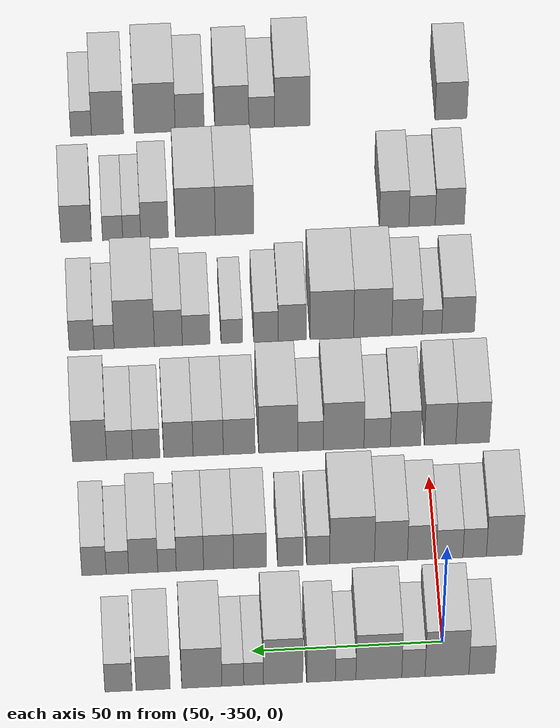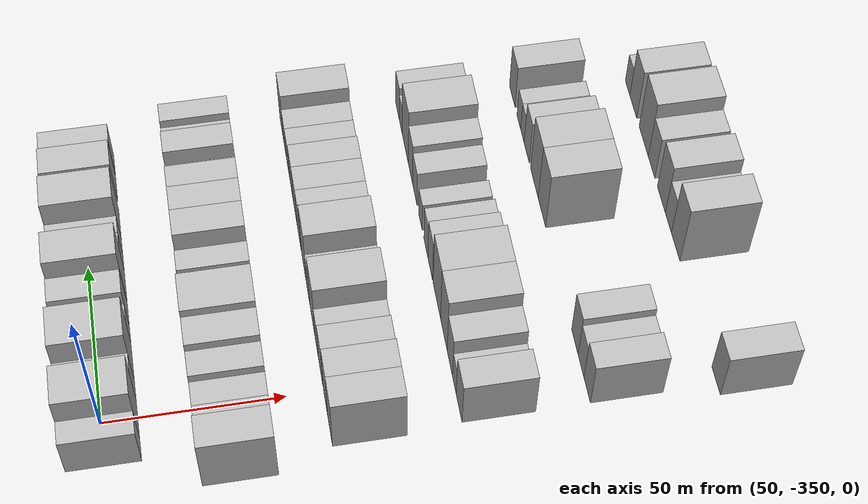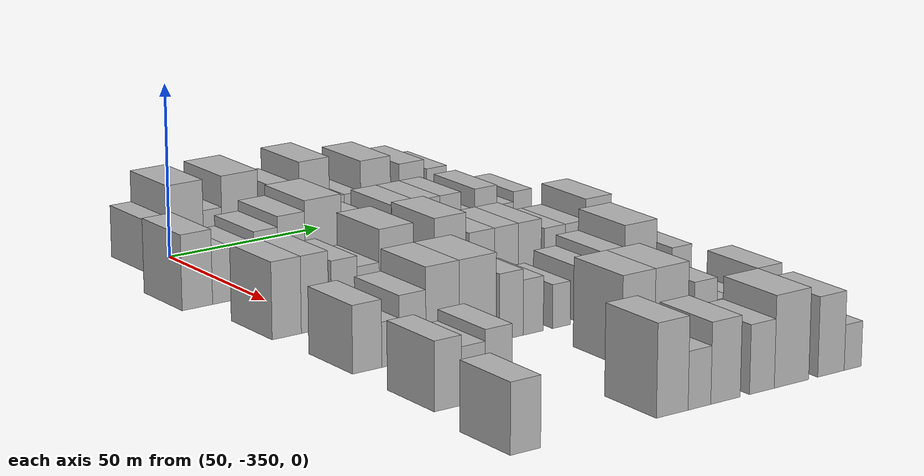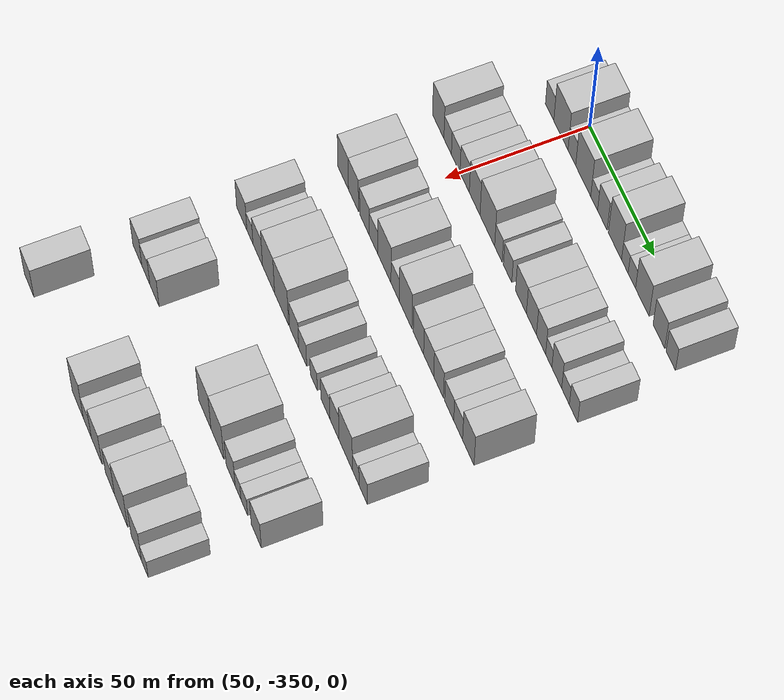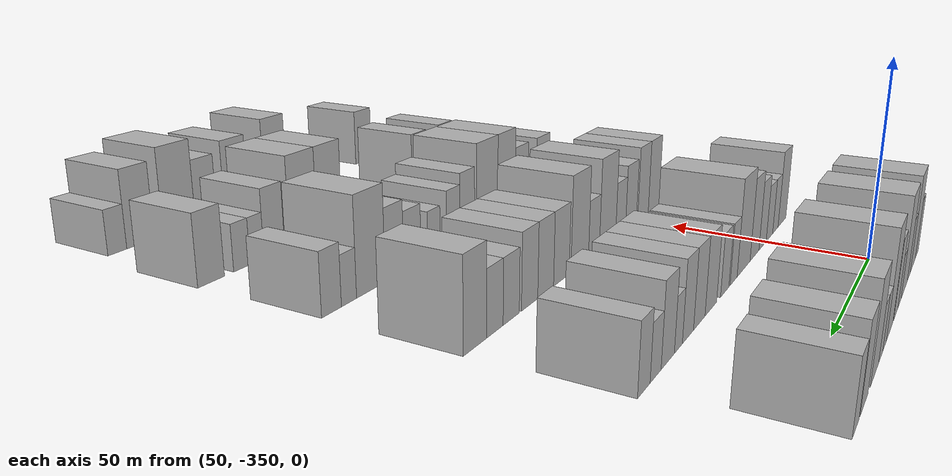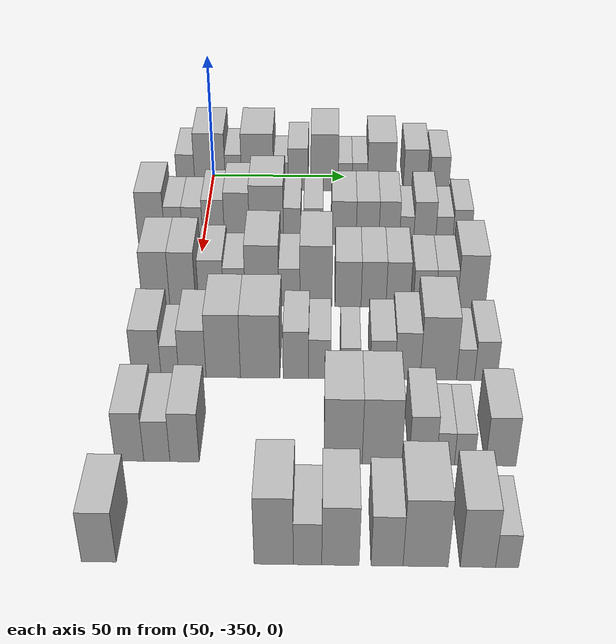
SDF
<sdf version="1.6">
 <world name="default">
  <model name="building_23">
   <static>1</static>
   <pose>50.0000 -359.5764 0 0.000000 0.000000 0.000000</pose>
   <link name="link">
    <pose>0 0 7.50 0 0 0</pose>
    <collision name="collision"><geometry><box><size>20.0000 6.7698 15.0000</size></box></geometry></collision>
    <visual name="visual">
     <cast_shadows>0</cast_shadows>
     <geometry><box><size>20.0000 6.7698 15.0000</size></box></geometry>
     <material>
      <script>
       <uri>model://HANNAS_wall/materials/scripts</uri>
       <uri>model://HANNAS_wall/materials/textures</uri>
       <name>vrc/HANNAS_wall</name>
      </script>
     </material>
    </visual>
   </link>
  </model>
  <model name="building_24">
   <static>1</static>
   <pose>50.0000 -350.4727 0 0.000000 0.000000 0.000000</pose>
   <link name="link">
    <pose>0 0 12.00 0 0 0</pose>
    <collision name="collision"><geometry><box><size>20.0000 11.4377 24.0000</size></box></geometry></collision>
    <visual name="visual">
     <cast_shadows>0</cast_shadows>
     <geometry><box><size>20.0000 11.4377 24.0000</size></box></geometry>
     <material>
      <script>
       <uri>model://HANNAS_wall/materials/scripts</uri>
       <uri>model://HANNAS_wall/materials/textures</uri>
       <name>vrc/HANNAS_wall</name>
      </script>
     </material>
    </visual>
   </link>
  </model>
  <model name="building_25">
   <static>1</static>
   <pose>50.0000 -341.7088 0 0.000000 0.000000 0.000000</pose>
   <link name="link">
    <pose>0 0 7.50 0 0 0</pose>
    <collision name="collision"><geometry><box><size>20.0000 6.0901 15.0000</size></box></geometry></collision>
    <visual name="visual">
     <cast_shadows>0</cast_shadows>
     <geometry><box><size>20.0000 6.0901 15.0000</size></box></geometry>
     <material>
      <script>
       <uri>model://HANNAS_wall/materials/scripts</uri>
       <uri>model://HANNAS_wall/materials/textures</uri>
       <name>vrc/HANNAS_wall</name>
      </script>
     </material>
    </visual>
   </link>
  </model>
  <model name="building_26">
   <static>1</static>
   <pose>50.0000 -332.6822 0 0.000000 0.000000 0.000000</pose>
   <link name="link">
    <pose>0 0 12.00 0 0 0</pose>
    <collision name="collision"><geometry><box><size>20.0000 11.9631 24.0000</size></box></geometry></collision>
    <visual name="visual">
     <cast_shadows>0</cast_shadows>
     <geometry><box><size>20.0000 11.9631 24.0000</size></box></geometry>
     <material>
      <script>
       <uri>model://HANNAS_wall/materials/scripts</uri>
       <uri>model://HANNAS_wall/materials/textures</uri>
       <name>vrc/HANNAS_wall</name>
      </script>
     </material>
    </visual>
   </link>
  </model>
  <model name="building_27">
   <static>1</static>
   <pose>50.0000 -324.0111 0 0.000000 0.000000 0.000000</pose>
   <link name="link">
    <pose>0 0 6.00 0 0 0</pose>
    <collision name="collision"><geometry><box><size>20.0000 5.3791 12.0000</size></box></geometry></collision>
    <visual name="visual">
     <cast_shadows>0</cast_shadows>
     <geometry><box><size>20.0000 5.3791 12.0000</size></box></geometry>
     <material>
      <script>
       <uri>model://HANNAS_wall/materials/scripts</uri>
       <uri>model://HANNAS_wall/materials/textures</uri>
       <name>vrc/HANNAS_wall</name>
      </script>
     </material>
    </visual>
   </link>
  </model>
  <model name="building_28">
   <static>1</static>
   <pose>50.0000 -317.5810 0 0.000000 0.000000 0.000000</pose>
   <link name="link">
    <pose>0 0 9.00 0 0 0</pose>
    <collision name="collision"><geometry><box><size>20.0000 7.4811 18.0000</size></box></geometry></collision>
    <visual name="visual">
     <cast_shadows>0</cast_shadows>
     <geometry><box><size>20.0000 7.4811 18.0000</size></box></geometry>
     <material>
      <script>
       <uri>model://HANNAS_wall/materials/scripts</uri>
       <uri>model://HANNAS_wall/materials/textures</uri>
       <name>vrc/HANNAS_wall</name>
      </script>
     </material>
    </visual>
   </link>
  </model>
  <model name="building_29">
   <static>1</static>
   <pose>50.0000 -307.7111 0 0.000000 0.000000 0.000000</pose>
   <link name="link">
    <pose>0 0 12.00 0 0 0</pose>
    <collision name="collision"><geometry><box><size>20.0000 10.2588 24.0000</size></box></geometry></collision>
    <visual name="visual">
     <cast_shadows>0</cast_shadows>
     <geometry><box><size>20.0000 10.2588 24.0000</size></box></geometry>
     <material>
      <script>
       <uri>model://HANNAS_wall/materials/scripts</uri>
       <uri>model://HANNAS_wall/materials/textures</uri>
       <name>vrc/HANNAS_wall</name>
      </script>
     </material>
    </visual>
   </link>
  </model>
  <model name="building_30">
   <static>1</static>
   <pose>50.0000 -300.0173 0 0.000000 0.000000 0.000000</pose>
   <link name="link">
    <pose>0 0 6.00 0 0 0</pose>
    <collision name="collision"><geometry><box><size>20.0000 5.1288 12.0000</size></box></geometry></collision>
    <visual name="visual">
     <cast_shadows>0</cast_shadows>
     <geometry><box><size>20.0000 5.1288 12.0000</size></box></geometry>
     <material>
      <script>
       <uri>model://HANNAS_wall/materials/scripts</uri>
       <uri>model://HANNAS_wall/materials/textures</uri>
       <name>vrc/HANNAS_wall</name>
      </script>
     </material>
    </visual>
   </link>
  </model>
  <model name="building_31">
   <static>1</static>
   <pose>50.0000 -294.6015 0 0.000000 0.000000 0.000000</pose>
   <link name="link">
    <pose>0 0 6.00 0 0 0</pose>
    <collision name="collision"><geometry><box><size>20.0000 5.7028 12.0000</size></box></geometry></collision>
    <visual name="visual">
     <cast_shadows>0</cast_shadows>
     <geometry><box><size>20.0000 5.7028 12.0000</size></box></geometry>
     <material>
      <script>
       <uri>model://HANNAS_wall/materials/scripts</uri>
       <uri>model://HANNAS_wall/materials/textures</uri>
       <name>vrc/HANNAS_wall</name>
      </script>
     </material>
    </visual>
   </link>
  </model>
  <model name="building_32">
   <static>1</static>
   <pose>50.0000 -286.5215 0 0.000000 0.000000 0.000000</pose>
   <link name="link">
    <pose>0 0 10.50 0 0 0</pose>
    <collision name="collision"><geometry><box><size>20.0000 10.4572 21.0000</size></box></geometry></collision>
    <visual name="visual">
     <cast_shadows>0</cast_shadows>
     <geometry><box><size>20.0000 10.4572 21.0000</size></box></geometry>
     <material>
      <script>
       <uri>model://HANNAS_wall/materials/scripts</uri>
       <uri>model://HANNAS_wall/materials/textures</uri>
       <name>vrc/HANNAS_wall</name>
      </script>
     </material>
    </visual>
   </link>
  </model>
  <model name="building_33">
   <static>1</static>
   <pose>50.0000 -273.8379 0 0.000000 0.000000 0.000000</pose>
   <link name="link">
    <pose>0 0 9.00 0 0 0</pose>
    <collision name="collision"><geometry><box><size>20.0000 8.9101 18.0000</size></box></geometry></collision>
    <visual name="visual">
     <cast_shadows>0</cast_shadows>
     <geometry><box><size>20.0000 8.9101 18.0000</size></box></geometry>
     <material>
      <script>
       <uri>model://HANNAS_wall/materials/scripts</uri>
       <uri>model://HANNAS_wall/materials/textures</uri>
       <name>vrc/HANNAS_wall</name>
      </script>
     </material>
    </visual>
   </link>
  </model>
  <model name="building_34">
   <static>1</static>
   <pose>50.0000 -264.8228 0 0.000000 0.000000 0.000000</pose>
   <link name="link">
    <pose>0 0 7.50 0 0 0</pose>
    <collision name="collision"><geometry><box><size>20.0000 7.1200 15.0000</size></box></geometry></collision>
    <visual name="visual">
     <cast_shadows>0</cast_shadows>
     <geometry><box><size>20.0000 7.1200 15.0000</size></box></geometry>
     <material>
      <script>
       <uri>model://HANNAS_wall/materials/scripts</uri>
       <uri>model://HANNAS_wall/materials/textures</uri>
       <name>vrc/HANNAS_wall</name>
      </script>
     </material>
    </visual>
   </link>
  </model>
  <model name="building_153">
   <static>1</static>
   <pose>85.0000 -368.1212 0 0.000000 0.000000 0.000000</pose>
   <link name="link">
    <pose>0 0 10.50 0 0 0</pose>
    <collision name="collision"><geometry><box><size>20.0000 9.4600 21.0000</size></box></geometry></collision>
    <visual name="visual">
     <cast_shadows>0</cast_shadows>
     <geometry><box><size>20.0000 9.4600 21.0000</size></box></geometry>
     <material>
      <script>
       <uri>model://HANNAS_wall/materials/scripts</uri>
       <uri>model://HANNAS_wall/materials/textures</uri>
       <name>vrc/HANNAS_wall</name>
      </script>
     </material>
    </visual>
   </link>
  </model>
  <model name="building_154">
   <static>1</static>
   <pose>85.0000 -360.2801 0 0.000000 0.000000 0.000000</pose>
   <link name="link">
    <pose>0 0 7.50 0 0 0</pose>
    <collision name="collision"><geometry><box><size>20.0000 6.2222 15.0000</size></box></geometry></collision>
    <visual name="visual">
     <cast_shadows>0</cast_shadows>
     <geometry><box><size>20.0000 6.2222 15.0000</size></box></geometry>
     <material>
      <script>
       <uri>model://HANNAS_wall/materials/scripts</uri>
       <uri>model://HANNAS_wall/materials/textures</uri>
       <name>vrc/HANNAS_wall</name>
      </script>
     </material>
    </visual>
   </link>
  </model>
  <model name="building_155">
   <static>1</static>
   <pose>85.0000 -353.6346 0 0.000000 0.000000 0.000000</pose>
   <link name="link">
    <pose>0 0 7.50 0 0 0</pose>
    <collision name="collision"><geometry><box><size>20.0000 7.0688 15.0000</size></box></geometry></collision>
    <visual name="visual">
     <cast_shadows>0</cast_shadows>
     <geometry><box><size>20.0000 7.0688 15.0000</size></box></geometry>
     <material>
      <script>
       <uri>model://HANNAS_wall/materials/scripts</uri>
       <uri>model://HANNAS_wall/materials/textures</uri>
       <name>vrc/HANNAS_wall</name>
      </script>
     </material>
    </visual>
   </link>
  </model>
  <model name="building_156">
   <static>1</static>
   <pose>85.0000 -346.2900 0 0.000000 0.000000 0.000000</pose>
   <link name="link">
    <pose>0 0 9.00 0 0 0</pose>
    <collision name="collision"><geometry><box><size>20.0000 7.6204 18.0000</size></box></geometry></collision>
    <visual name="visual">
     <cast_shadows>0</cast_shadows>
     <geometry><box><size>20.0000 7.6204 18.0000</size></box></geometry>
     <material>
      <script>
       <uri>model://HANNAS_wall/materials/scripts</uri>
       <uri>model://HANNAS_wall/materials/textures</uri>
       <name>vrc/HANNAS_wall</name>
      </script>
     </material>
    </visual>
   </link>
  </model>
  <model name="building_157">
   <static>1</static>
   <pose>85.0000 -338.1153 0 0.000000 0.000000 0.000000</pose>
   <link name="link">
    <pose>0 0 10.50 0 0 0</pose>
    <collision name="collision"><geometry><box><size>20.0000 8.7290 21.0000</size></box></geometry></collision>
    <visual name="visual">
     <cast_shadows>0</cast_shadows>
     <geometry><box><size>20.0000 8.7290 21.0000</size></box></geometry>
     <material>
      <script>
       <uri>model://HANNAS_wall/materials/scripts</uri>
       <uri>model://HANNAS_wall/materials/textures</uri>
       <name>vrc/HANNAS_wall</name>
      </script>
     </material>
    </visual>
   </link>
  </model>
  <model name="building_158">
   <static>1</static>
   <pose>85.0000 -327.8190 0 0.000000 0.000000 0.000000</pose>
   <link name="link">
    <pose>0 0 12.00 0 0 0</pose>
    <collision name="collision"><geometry><box><size>20.0000 11.8637 24.0000</size></box></geometry></collision>
    <visual name="visual">
     <cast_shadows>0</cast_shadows>
     <geometry><box><size>20.0000 11.8637 24.0000</size></box></geometry>
     <material>
      <script>
       <uri>model://HANNAS_wall/materials/scripts</uri>
       <uri>model://HANNAS_wall/materials/textures</uri>
       <name>vrc/HANNAS_wall</name>
      </script>
     </material>
    </visual>
   </link>
  </model>
  <model name="building_159">
   <static>1</static>
   <pose>85.0000 -318.8666 0 0.000000 0.000000 0.000000</pose>
   <link name="link">
    <pose>0 0 7.50 0 0 0</pose>
    <collision name="collision"><geometry><box><size>20.0000 6.0411 15.0000</size></box></geometry></collision>
    <visual name="visual">
     <cast_shadows>0</cast_shadows>
     <geometry><box><size>20.0000 6.0411 15.0000</size></box></geometry>
     <material>
      <script>
       <uri>model://HANNAS_wall/materials/scripts</uri>
       <uri>model://HANNAS_wall/materials/textures</uri>
       <name>vrc/HANNAS_wall</name>
      </script>
     </material>
    </visual>
   </link>
  </model>
  <model name="building_160">
   <static>1</static>
   <pose>85.0000 -311.5044 0 0.000000 0.000000 0.000000</pose>
   <link name="link">
    <pose>0 0 7.50 0 0 0</pose>
    <collision name="collision"><geometry><box><size>20.0000 6.6834 15.0000</size></box></geometry></collision>
    <visual name="visual">
     <cast_shadows>0</cast_shadows>
     <geometry><box><size>20.0000 6.6834 15.0000</size></box></geometry>
     <material>
      <script>
       <uri>model://HANNAS_wall/materials/scripts</uri>
       <uri>model://HANNAS_wall/materials/textures</uri>
       <name>vrc/HANNAS_wall</name>
      </script>
     </material>
    </visual>
   </link>
  </model>
  <model name="building_161">
   <static>1</static>
   <pose>85.0000 -300.8433 0 0.000000 0.000000 0.000000</pose>
   <link name="link">
    <pose>0 0 9.00 0 0 0</pose>
    <collision name="collision"><geometry><box><size>20.0000 8.6386 18.0000</size></box></geometry></collision>
    <visual name="visual">
     <cast_shadows>0</cast_shadows>
     <geometry><box><size>20.0000 8.6386 18.0000</size></box></geometry>
     <material>
      <script>
       <uri>model://HANNAS_wall/materials/scripts</uri>
       <uri>model://HANNAS_wall/materials/textures</uri>
       <name>vrc/HANNAS_wall</name>
      </script>
     </material>
    </visual>
   </link>
  </model>
  <model name="building_162">
   <static>1</static>
   <pose>85.0000 -292.5552 0 0.000000 0.000000 0.000000</pose>
   <link name="link">
    <pose>0 0 9.00 0 0 0</pose>
    <collision name="collision"><geometry><box><size>20.0000 7.9376 18.0000</size></box></geometry></collision>
    <visual name="visual">
     <cast_shadows>0</cast_shadows>
     <geometry><box><size>20.0000 7.9376 18.0000</size></box></geometry>
     <material>
      <script>
       <uri>model://HANNAS_wall/materials/scripts</uri>
       <uri>model://HANNAS_wall/materials/textures</uri>
       <name>vrc/HANNAS_wall</name>
      </script>
     </material>
    </visual>
   </link>
  </model>
  <model name="building_163">
   <static>1</static>
   <pose>85.0000 -284.9778 0 0.000000 0.000000 0.000000</pose>
   <link name="link">
    <pose>0 0 9.00 0 0 0</pose>
    <collision name="collision"><geometry><box><size>20.0000 7.2172 18.0000</size></box></geometry></collision>
    <visual name="visual">
     <cast_shadows>0</cast_shadows>
     <geometry><box><size>20.0000 7.2172 18.0000</size></box></geometry>
     <material>
      <script>
       <uri>model://HANNAS_wall/materials/scripts</uri>
       <uri>model://HANNAS_wall/materials/textures</uri>
       <name>vrc/HANNAS_wall</name>
      </script>
     </material>
    </visual>
   </link>
  </model>
  <model name="building_164">
   <static>1</static>
   <pose>85.0000 -278.9257 0 0.000000 0.000000 0.000000</pose>
   <link name="link">
    <pose>0 0 6.00 0 0 0</pose>
    <collision name="collision"><geometry><box><size>20.0000 4.8871 12.0000</size></box></geometry></collision>
    <visual name="visual">
     <cast_shadows>0</cast_shadows>
     <geometry><box><size>20.0000 4.8871 12.0000</size></box></geometry>
     <material>
      <script>
       <uri>model://HANNAS_wall/materials/scripts</uri>
       <uri>model://HANNAS_wall/materials/textures</uri>
       <name>vrc/HANNAS_wall</name>
      </script>
     </material>
    </visual>
   </link>
  </model>
  <model name="building_165">
   <static>1</static>
   <pose>85.0000 -272.6538 0 0.000000 0.000000 0.000000</pose>
   <link name="link">
    <pose>0 0 9.00 0 0 0</pose>
    <collision name="collision"><geometry><box><size>20.0000 7.6566 18.0000</size></box></geometry></collision>
    <visual name="visual">
     <cast_shadows>0</cast_shadows>
     <geometry><box><size>20.0000 7.6566 18.0000</size></box></geometry>
     <material>
      <script>
       <uri>model://HANNAS_wall/materials/scripts</uri>
       <uri>model://HANNAS_wall/materials/textures</uri>
       <name>vrc/HANNAS_wall</name>
      </script>
     </material>
    </visual>
   </link>
  </model>
  <model name="building_166">
   <static>1</static>
   <pose>85.0000 -265.8459 0 0.000000 0.000000 0.000000</pose>
   <link name="link">
    <pose>0 0 6.00 0 0 0</pose>
    <collision name="collision"><geometry><box><size>20.0000 5.9593 12.0000</size></box></geometry></collision>
    <visual name="visual">
     <cast_shadows>0</cast_shadows>
     <geometry><box><size>20.0000 5.9593 12.0000</size></box></geometry>
     <material>
      <script>
       <uri>model://HANNAS_wall/materials/scripts</uri>
       <uri>model://HANNAS_wall/materials/textures</uri>
       <name>vrc/HANNAS_wall</name>
      </script>
     </material>
    </visual>
   </link>
  </model>
  <model name="building_167">
   <static>1</static>
   <pose>85.0000 -259.6561 0 0.000000 0.000000 0.000000</pose>
   <link name="link">
    <pose>0 0 7.50 0 0 0</pose>
    <collision name="collision"><geometry><box><size>20.0000 6.4202 15.0000</size></box></geometry></collision>
    <visual name="visual">
     <cast_shadows>0</cast_shadows>
     <geometry><box><size>20.0000 6.4202 15.0000</size></box></geometry>
     <material>
      <script>
       <uri>model://HANNAS_wall/materials/scripts</uri>
       <uri>model://HANNAS_wall/materials/textures</uri>
       <name>vrc/HANNAS_wall</name>
      </script>
     </material>
    </visual>
   </link>
  </model>
  <model name="building_288">
   <static>1</static>
   <pose>120.0000 -362.3247 0 0.000000 0.000000 0.000000</pose>
   <link name="link">
    <pose>0 0 10.50 0 0 0</pose>
    <collision name="collision"><geometry><box><size>20.0000 9.0084 21.0000</size></box></geometry></collision>
    <visual name="visual">
     <cast_shadows>0</cast_shadows>
     <geometry><box><size>20.0000 9.0084 21.0000</size></box></geometry>
     <material>
      <script>
       <uri>model://HANNAS_wall/materials/scripts</uri>
       <uri>model://HANNAS_wall/materials/textures</uri>
       <name>vrc/HANNAS_wall</name>
      </script>
     </material>
    </visual>
   </link>
  </model>
  <model name="building_289">
   <static>1</static>
   <pose>120.0000 -353.5827 0 0.000000 0.000000 0.000000</pose>
   <link name="link">
    <pose>0 0 10.50 0 0 0</pose>
    <collision name="collision"><geometry><box><size>20.0000 8.4756 21.0000</size></box></geometry></collision>
    <visual name="visual">
     <cast_shadows>0</cast_shadows>
     <geometry><box><size>20.0000 8.4756 21.0000</size></box></geometry>
     <material>
      <script>
       <uri>model://HANNAS_wall/materials/scripts</uri>
       <uri>model://HANNAS_wall/materials/textures</uri>
       <name>vrc/HANNAS_wall</name>
      </script>
     </material>
    </visual>
   </link>
  </model>
  <model name="building_290">
   <static>1</static>
   <pose>120.0000 -344.2671 0 0.000000 0.000000 0.000000</pose>
   <link name="link">
    <pose>0 0 9.00 0 0 0</pose>
    <collision name="collision"><geometry><box><size>20.0000 8.1555 18.0000</size></box></geometry></collision>
    <visual name="visual">
     <cast_shadows>0</cast_shadows>
     <geometry><box><size>20.0000 8.1555 18.0000</size></box></geometry>
     <material>
      <script>
       <uri>model://HANNAS_wall/materials/scripts</uri>
       <uri>model://HANNAS_wall/materials/textures</uri>
       <name>vrc/HANNAS_wall</name>
      </script>
     </material>
    </visual>
   </link>
  </model>
  <model name="building_291">
   <static>1</static>
   <pose>120.0000 -336.6676 0 0.000000 0.000000 0.000000</pose>
   <link name="link">
    <pose>0 0 7.50 0 0 0</pose>
    <collision name="collision"><geometry><box><size>20.0000 7.0435 15.0000</size></box></geometry></collision>
    <visual name="visual">
     <cast_shadows>0</cast_shadows>
     <geometry><box><size>20.0000 7.0435 15.0000</size></box></geometry>
     <material>
      <script>
       <uri>model://HANNAS_wall/materials/scripts</uri>
       <uri>model://HANNAS_wall/materials/textures</uri>
       <name>vrc/HANNAS_wall</name>
      </script>
     </material>
    </visual>
   </link>
  </model>
  <model name="building_292">
   <static>1</static>
   <pose>120.0000 -327.6924 0 0.000000 0.000000 0.000000</pose>
   <link name="link">
    <pose>0 0 12.00 0 0 0</pose>
    <collision name="collision"><geometry><box><size>20.0000 10.9069 24.0000</size></box></geometry></collision>
    <visual name="visual">
     <cast_shadows>0</cast_shadows>
     <geometry><box><size>20.0000 10.9069 24.0000</size></box></geometry>
     <material>
      <script>
       <uri>model://HANNAS_wall/materials/scripts</uri>
       <uri>model://HANNAS_wall/materials/textures</uri>
       <name>vrc/HANNAS_wall</name>
      </script>
     </material>
    </visual>
   </link>
  </model>
  <model name="building_293">
   <static>1</static>
   <pose>120.0000 -318.8040 0 0.000000 0.000000 0.000000</pose>
   <link name="link">
    <pose>0 0 7.50 0 0 0</pose>
    <collision name="collision"><geometry><box><size>20.0000 6.8697 15.0000</size></box></geometry></collision>
    <visual name="visual">
     <cast_shadows>0</cast_shadows>
     <geometry><box><size>20.0000 6.8697 15.0000</size></box></geometry>
     <material>
      <script>
       <uri>model://HANNAS_wall/materials/scripts</uri>
       <uri>model://HANNAS_wall/materials/textures</uri>
       <name>vrc/HANNAS_wall</name>
      </script>
     </material>
    </visual>
   </link>
  </model>
  <model name="building_294">
   <static>1</static>
   <pose>120.0000 -310.1662 0 0.000000 0.000000 0.000000</pose>
   <link name="link">
    <pose>0 0 12.00 0 0 0</pose>
    <collision name="collision"><geometry><box><size>20.0000 10.4059 24.0000</size></box></geometry></collision>
    <visual name="visual">
     <cast_shadows>0</cast_shadows>
     <geometry><box><size>20.0000 10.4059 24.0000</size></box></geometry>
     <material>
      <script>
       <uri>model://HANNAS_wall/materials/scripts</uri>
       <uri>model://HANNAS_wall/materials/textures</uri>
       <name>vrc/HANNAS_wall</name>
      </script>
     </material>
    </visual>
   </link>
  </model>
  <model name="building_295">
   <static>1</static>
   <pose>120.0000 -299.7187 0 0.000000 0.000000 0.000000</pose>
   <link name="link">
    <pose>0 0 9.00 0 0 0</pose>
    <collision name="collision"><geometry><box><size>20.0000 8.4891 18.0000</size></box></geometry></collision>
    <visual name="visual">
     <cast_shadows>0</cast_shadows>
     <geometry><box><size>20.0000 8.4891 18.0000</size></box></geometry>
     <material>
      <script>
       <uri>model://HANNAS_wall/materials/scripts</uri>
       <uri>model://HANNAS_wall/materials/textures</uri>
       <name>vrc/HANNAS_wall</name>
      </script>
     </material>
    </visual>
   </link>
  </model>
  <model name="building_296">
   <static>1</static>
   <pose>120.0000 -291.4228 0 0.000000 0.000000 0.000000</pose>
   <link name="link">
    <pose>0 0 9.00 0 0 0</pose>
    <collision name="collision"><geometry><box><size>20.0000 8.1028 18.0000</size></box></geometry></collision>
    <visual name="visual">
     <cast_shadows>0</cast_shadows>
     <geometry><box><size>20.0000 8.1028 18.0000</size></box></geometry>
     <material>
      <script>
       <uri>model://HANNAS_wall/materials/scripts</uri>
       <uri>model://HANNAS_wall/materials/textures</uri>
       <name>vrc/HANNAS_wall</name>
      </script>
     </material>
    </visual>
   </link>
  </model>
  <model name="building_297">
   <static>1</static>
   <pose>120.0000 -283.4492 0 0.000000 0.000000 0.000000</pose>
   <link name="link">
    <pose>0 0 9.00 0 0 0</pose>
    <collision name="collision"><geometry><box><size>20.0000 7.8443 18.0000</size></box></geometry></collision>
    <visual name="visual">
     <cast_shadows>0</cast_shadows>
     <geometry><box><size>20.0000 7.8443 18.0000</size></box></geometry>
     <material>
      <script>
       <uri>model://HANNAS_wall/materials/scripts</uri>
       <uri>model://HANNAS_wall/materials/textures</uri>
       <name>vrc/HANNAS_wall</name>
      </script>
     </material>
    </visual>
   </link>
  </model>
  <model name="building_298">
   <static>1</static>
   <pose>120.0000 -274.9010 0 0.000000 0.000000 0.000000</pose>
   <link name="link">
    <pose>0 0 7.50 0 0 0</pose>
    <collision name="collision"><geometry><box><size>20.0000 7.2520 15.0000</size></box></geometry></collision>
    <visual name="visual">
     <cast_shadows>0</cast_shadows>
     <geometry><box><size>20.0000 7.2520 15.0000</size></box></geometry>
     <material>
      <script>
       <uri>model://HANNAS_wall/materials/scripts</uri>
       <uri>model://HANNAS_wall/materials/textures</uri>
       <name>vrc/HANNAS_wall</name>
      </script>
     </material>
    </visual>
   </link>
  </model>
  <model name="building_299">
   <static>1</static>
   <pose>120.0000 -267.7712 0 0.000000 0.000000 0.000000</pose>
   <link name="link">
    <pose>0 0 7.50 0 0 0</pose>
    <collision name="collision"><geometry><box><size>20.0000 7.0077 15.0000</size></box></geometry></collision>
    <visual name="visual">
     <cast_shadows>0</cast_shadows>
     <geometry><box><size>20.0000 7.0077 15.0000</size></box></geometry>
     <material>
      <script>
       <uri>model://HANNAS_wall/materials/scripts</uri>
       <uri>model://HANNAS_wall/materials/textures</uri>
       <name>vrc/HANNAS_wall</name>
      </script>
     </material>
    </visual>
   </link>
  </model>
  <model name="building_300">
   <static>1</static>
   <pose>120.0000 -259.7203 0 0.000000 0.000000 0.000000</pose>
   <link name="link">
    <pose>0 0 10.50 0 0 0</pose>
    <collision name="collision"><geometry><box><size>20.0000 9.0942 21.0000</size></box></geometry></collision>
    <visual name="visual">
     <cast_shadows>0</cast_shadows>
     <geometry><box><size>20.0000 9.0942 21.0000</size></box></geometry>
     <material>
      <script>
       <uri>model://HANNAS_wall/materials/scripts</uri>
       <uri>model://HANNAS_wall/materials/textures</uri>
       <name>vrc/HANNAS_wall</name>
      </script>
     </material>
    </visual>
   </link>
  </model>
  <model name="building_415">
   <static>1</static>
   <pose>155.0000 -360.9027 0 0.000000 0.000000 0.000000</pose>
   <link name="link">
    <pose>0 0 9.00 0 0 0</pose>
    <collision name="collision"><geometry><box><size>20.0000 8.8611 18.0000</size></box></geometry></collision>
    <visual name="visual">
     <cast_shadows>0</cast_shadows>
     <geometry><box><size>20.0000 8.8611 18.0000</size></box></geometry>
     <material>
      <script>
       <uri>model://HANNAS_wall/materials/scripts</uri>
       <uri>model://HANNAS_wall/materials/textures</uri>
       <name>vrc/HANNAS_wall</name>
      </script>
     </material>
    </visual>
   </link>
  </model>
  <model name="building_416">
   <static>1</static>
   <pose>155.0000 -353.7948 0 0.000000 0.000000 0.000000</pose>
   <link name="link">
    <pose>0 0 6.00 0 0 0</pose>
    <collision name="collision"><geometry><box><size>20.0000 5.3547 12.0000</size></box></geometry></collision>
    <visual name="visual">
     <cast_shadows>0</cast_shadows>
     <geometry><box><size>20.0000 5.3547 12.0000</size></box></geometry>
     <material>
      <script>
       <uri>model://HANNAS_wall/materials/scripts</uri>
       <uri>model://HANNAS_wall/materials/textures</uri>
       <name>vrc/HANNAS_wall</name>
      </script>
     </material>
    </visual>
   </link>
  </model>
  <model name="building_417">
   <static>1</static>
   <pose>155.0000 -347.0029 0 0.000000 0.000000 0.000000</pose>
   <link name="link">
    <pose>0 0 9.00 0 0 0</pose>
    <collision name="collision"><geometry><box><size>20.0000 8.2290 18.0000</size></box></geometry></collision>
    <visual name="visual">
     <cast_shadows>0</cast_shadows>
     <geometry><box><size>20.0000 8.2290 18.0000</size></box></geometry>
     <material>
      <script>
       <uri>model://HANNAS_wall/materials/scripts</uri>
       <uri>model://HANNAS_wall/materials/textures</uri>
       <name>vrc/HANNAS_wall</name>
      </script>
     </material>
    </visual>
   </link>
  </model>
  <model name="building_418">
   <static>1</static>
   <pose>155.0000 -337.7092 0 0.000000 0.000000 0.000000</pose>
   <link name="link">
    <pose>0 0 12.00 0 0 0</pose>
    <collision name="collision"><geometry><box><size>20.0000 10.3584 24.0000</size></box></geometry></collision>
    <visual name="visual">
     <cast_shadows>0</cast_shadows>
     <geometry><box><size>20.0000 10.3584 24.0000</size></box></geometry>
     <material>
      <script>
       <uri>model://HANNAS_wall/materials/scripts</uri>
       <uri>model://HANNAS_wall/materials/textures</uri>
       <name>vrc/HANNAS_wall</name>
      </script>
     </material>
    </visual>
   </link>
  </model>
  <model name="building_419">
   <static>1</static>
   <pose>155.0000 -326.5961 0 0.000000 0.000000 0.000000</pose>
   <link name="link">
    <pose>0 0 12.00 0 0 0</pose>
    <collision name="collision"><geometry><box><size>20.0000 11.8679 24.0000</size></box></geometry></collision>
    <visual name="visual">
     <cast_shadows>0</cast_shadows>
     <geometry><box><size>20.0000 11.8679 24.0000</size></box></geometry>
     <material>
      <script>
       <uri>model://HANNAS_wall/materials/scripts</uri>
       <uri>model://HANNAS_wall/materials/textures</uri>
       <name>vrc/HANNAS_wall</name>
      </script>
     </material>
    </visual>
   </link>
  </model>
  <model name="building_420">
   <static>1</static>
   <pose>155.0000 -315.8380 0 0.000000 0.000000 0.000000</pose>
   <link name="link">
    <pose>0 0 9.00 0 0 0</pose>
    <collision name="collision"><geometry><box><size>20.0000 7.6483 18.0000</size></box></geometry></collision>
    <visual name="visual">
     <cast_shadows>0</cast_shadows>
     <geometry><box><size>20.0000 7.6483 18.0000</size></box></geometry>
     <material>
      <script>
       <uri>model://HANNAS_wall/materials/scripts</uri>
       <uri>model://HANNAS_wall/materials/textures</uri>
       <name>vrc/HANNAS_wall</name>
      </script>
     </material>
    </visual>
   </link>
  </model>
  <model name="building_421">
   <static>1</static>
   <pose>155.0000 -308.7056 0 0.000000 0.000000 0.000000</pose>
   <link name="link">
    <pose>0 0 7.50 0 0 0</pose>
    <collision name="collision"><geometry><box><size>20.0000 6.6164 15.0000</size></box></geometry></collision>
    <visual name="visual">
     <cast_shadows>0</cast_shadows>
     <geometry><box><size>20.0000 6.6164 15.0000</size></box></geometry>
     <material>
      <script>
       <uri>model://HANNAS_wall/materials/scripts</uri>
       <uri>model://HANNAS_wall/materials/textures</uri>
       <name>vrc/HANNAS_wall</name>
      </script>
     </material>
    </visual>
   </link>
  </model>
  <model name="building_422">
   <static>1</static>
   <pose>155.0000 -299.4697 0 0.000000 0.000000 0.000000</pose>
   <link name="link">
    <pose>0 0 6.00 0 0 0</pose>
    <collision name="collision"><geometry><box><size>20.0000 5.8554 12.0000</size></box></geometry></collision>
    <visual name="visual">
     <cast_shadows>0</cast_shadows>
     <geometry><box><size>20.0000 5.8554 12.0000</size></box></geometry>
     <material>
      <script>
       <uri>model://HANNAS_wall/materials/scripts</uri>
       <uri>model://HANNAS_wall/materials/textures</uri>
       <name>vrc/HANNAS_wall</name>
      </script>
     </material>
    </visual>
   </link>
  </model>
  <model name="building_423">
   <static>1</static>
   <pose>155.0000 -289.7954 0 0.000000 0.000000 0.000000</pose>
   <link name="link">
    <pose>0 0 7.50 0 0 0</pose>
    <collision name="collision"><geometry><box><size>20.0000 7.4931 15.0000</size></box></geometry></collision>
    <visual name="visual">
     <cast_shadows>0</cast_shadows>
     <geometry><box><size>20.0000 7.4931 15.0000</size></box></geometry>
     <material>
      <script>
       <uri>model://HANNAS_wall/materials/scripts</uri>
       <uri>model://HANNAS_wall/materials/textures</uri>
       <name>vrc/HANNAS_wall</name>
      </script>
     </material>
    </visual>
   </link>
  </model>
  <model name="building_424">
   <static>1</static>
   <pose>155.0000 -282.2638 0 0.000000 0.000000 0.000000</pose>
   <link name="link">
    <pose>0 0 9.00 0 0 0</pose>
    <collision name="collision"><geometry><box><size>20.0000 7.5701 18.0000</size></box></geometry></collision>
    <visual name="visual">
     <cast_shadows>0</cast_shadows>
     <geometry><box><size>20.0000 7.5701 18.0000</size></box></geometry>
     <material>
      <script>
       <uri>model://HANNAS_wall/materials/scripts</uri>
       <uri>model://HANNAS_wall/materials/textures</uri>
       <name>vrc/HANNAS_wall</name>
      </script>
     </material>
    </visual>
   </link>
  </model>
  <model name="building_425">
   <static>1</static>
   <pose>155.0000 -273.0227 0 0.000000 0.000000 0.000000</pose>
   <link name="link">
    <pose>0 0 12.00 0 0 0</pose>
    <collision name="collision"><geometry><box><size>20.0000 10.9121 24.0000</size></box></geometry></collision>
    <visual name="visual">
     <cast_shadows>0</cast_shadows>
     <geometry><box><size>20.0000 10.9121 24.0000</size></box></geometry>
     <material>
      <script>
       <uri>model://HANNAS_wall/materials/scripts</uri>
       <uri>model://HANNAS_wall/materials/textures</uri>
       <name>vrc/HANNAS_wall</name>
      </script>
     </material>
    </visual>
   </link>
  </model>
  <model name="building_426">
   <static>1</static>
   <pose>155.0000 -264.8647 0 0.000000 0.000000 0.000000</pose>
   <link name="link">
    <pose>0 0 6.00 0 0 0</pose>
    <collision name="collision"><geometry><box><size>20.0000 5.4040 12.0000</size></box></geometry></collision>
    <visual name="visual">
     <cast_shadows>0</cast_shadows>
     <geometry><box><size>20.0000 5.4040 12.0000</size></box></geometry>
     <material>
      <script>
       <uri>model://HANNAS_wall/materials/scripts</uri>
       <uri>model://HANNAS_wall/materials/textures</uri>
       <name>vrc/HANNAS_wall</name>
      </script>
     </material>
    </visual>
   </link>
  </model>
  <model name="building_427">
   <static>1</static>
   <pose>155.0000 -258.7875 0 0.000000 0.000000 0.000000</pose>
   <link name="link">
    <pose>0 0 7.50 0 0 0</pose>
    <collision name="collision"><geometry><box><size>20.0000 6.7504 15.0000</size></box></geometry></collision>
    <visual name="visual">
     <cast_shadows>0</cast_shadows>
     <geometry><box><size>20.0000 6.7504 15.0000</size></box></geometry>
     <material>
      <script>
       <uri>model://HANNAS_wall/materials/scripts</uri>
       <uri>model://HANNAS_wall/materials/textures</uri>
       <name>vrc/HANNAS_wall</name>
      </script>
     </material>
    </visual>
   </link>
  </model>
  <model name="building_543">
   <static>1</static>
   <pose>190.0000 -361.1223 0 0.000000 0.000000 0.000000</pose>
   <link name="link">
    <pose>0 0 9.00 0 0 0</pose>
    <collision name="collision"><geometry><box><size>20.0000 8.0227 18.0000</size></box></geometry></collision>
    <visual name="visual">
     <cast_shadows>0</cast_shadows>
     <geometry><box><size>20.0000 8.0227 18.0000</size></box></geometry>
     <material>
      <script>
       <uri>model://HANNAS_wall/materials/scripts</uri>
       <uri>model://HANNAS_wall/materials/textures</uri>
       <name>vrc/HANNAS_wall</name>
      </script>
     </material>
    </visual>
   </link>
  </model>
  <model name="building_544">
   <static>1</static>
   <pose>190.0000 -353.4910 0 0.000000 0.000000 0.000000</pose>
   <link name="link">
    <pose>0 0 7.50 0 0 0</pose>
    <collision name="collision"><geometry><box><size>20.0000 7.2399 15.0000</size></box></geometry></collision>
    <visual name="visual">
     <cast_shadows>0</cast_shadows>
     <geometry><box><size>20.0000 7.2399 15.0000</size></box></geometry>
     <material>
      <script>
       <uri>model://HANNAS_wall/materials/scripts</uri>
       <uri>model://HANNAS_wall/materials/textures</uri>
       <name>vrc/HANNAS_wall</name>
      </script>
     </material>
    </visual>
   </link>
  </model>
  <model name="building_545">
   <static>1</static>
   <pose>190.0000 -345.8066 0 0.000000 0.000000 0.000000</pose>
   <link name="link">
    <pose>0 0 9.00 0 0 0</pose>
    <collision name="collision"><geometry><box><size>20.0000 8.1288 18.0000</size></box></geometry></collision>
    <visual name="visual">
     <cast_shadows>0</cast_shadows>
     <geometry><box><size>20.0000 8.1288 18.0000</size></box></geometry>
     <material>
      <script>
       <uri>model://HANNAS_wall/materials/scripts</uri>
       <uri>model://HANNAS_wall/materials/textures</uri>
       <name>vrc/HANNAS_wall</name>
      </script>
     </material>
    </visual>
   </link>
  </model>
  <model name="building_546">
   <static>1</static>
   <pose>190.0000 -301.9312 0 0.000000 0.000000 0.000000</pose>
   <link name="link">
    <pose>0 0 12.00 0 0 0</pose>
    <collision name="collision"><geometry><box><size>20.0000 10.5407 24.0000</size></box></geometry></collision>
    <visual name="visual">
     <cast_shadows>0</cast_shadows>
     <geometry><box><size>20.0000 10.5407 24.0000</size></box></geometry>
     <material>
      <script>
       <uri>model://HANNAS_wall/materials/scripts</uri>
       <uri>model://HANNAS_wall/materials/textures</uri>
       <name>vrc/HANNAS_wall</name>
      </script>
     </material>
    </visual>
   </link>
  </model>
  <model name="building_547">
   <static>1</static>
   <pose>190.0000 -291.2020 0 0.000000 0.000000 0.000000</pose>
   <link name="link">
    <pose>0 0 12.00 0 0 0</pose>
    <collision name="collision"><geometry><box><size>20.0000 10.9177 24.0000</size></box></geometry></collision>
    <visual name="visual">
     <cast_shadows>0</cast_shadows>
     <geometry><box><size>20.0000 10.9177 24.0000</size></box></geometry>
     <material>
      <script>
       <uri>model://HANNAS_wall/materials/scripts</uri>
       <uri>model://HANNAS_wall/materials/textures</uri>
       <name>vrc/HANNAS_wall</name>
      </script>
     </material>
    </visual>
   </link>
  </model>
  <model name="building_548">
   <static>1</static>
   <pose>190.0000 -279.9547 0 0.000000 0.000000 0.000000</pose>
   <link name="link">
    <pose>0 0 9.00 0 0 0</pose>
    <collision name="collision"><geometry><box><size>20.0000 7.5769 18.0000</size></box></geometry></collision>
    <visual name="visual">
     <cast_shadows>0</cast_shadows>
     <geometry><box><size>20.0000 7.5769 18.0000</size></box></geometry>
     <material>
      <script>
       <uri>model://HANNAS_wall/materials/scripts</uri>
       <uri>model://HANNAS_wall/materials/textures</uri>
       <name>vrc/HANNAS_wall</name>
      </script>
     </material>
    </visual>
   </link>
  </model>
  <model name="building_549">
   <static>1</static>
   <pose>190.0000 -273.6925 0 0.000000 0.000000 0.000000</pose>
   <link name="link">
    <pose>0 0 6.00 0 0 0</pose>
    <collision name="collision"><geometry><box><size>20.0000 4.9475 12.0000</size></box></geometry></collision>
    <visual name="visual">
     <cast_shadows>0</cast_shadows>
     <geometry><box><size>20.0000 4.9475 12.0000</size></box></geometry>
     <material>
      <script>
       <uri>model://HANNAS_wall/materials/scripts</uri>
       <uri>model://HANNAS_wall/materials/textures</uri>
       <name>vrc/HANNAS_wall</name>
      </script>
     </material>
    </visual>
   </link>
  </model>
  <model name="building_550">
   <static>1</static>
   <pose>190.0000 -268.4475 0 0.000000 0.000000 0.000000</pose>
   <link name="link">
    <pose>0 0 6.00 0 0 0</pose>
    <collision name="collision"><geometry><box><size>20.0000 5.5425 12.0000</size></box></geometry></collision>
    <visual name="visual">
     <cast_shadows>0</cast_shadows>
     <geometry><box><size>20.0000 5.5425 12.0000</size></box></geometry>
     <material>
      <script>
       <uri>model://HANNAS_wall/materials/scripts</uri>
       <uri>model://HANNAS_wall/materials/textures</uri>
       <name>vrc/HANNAS_wall</name>
      </script>
     </material>
    </visual>
   </link>
  </model>
  <model name="building_551">
   <static>1</static>
   <pose>190.0000 -258.4615 0 0.000000 0.000000 0.000000</pose>
   <link name="link">
    <pose>0 0 9.00 0 0 0</pose>
    <collision name="collision"><geometry><box><size>20.0000 8.4295 18.0000</size></box></geometry></collision>
    <visual name="visual">
     <cast_shadows>0</cast_shadows>
     <geometry><box><size>20.0000 8.4295 18.0000</size></box></geometry>
     <material>
      <script>
       <uri>model://HANNAS_wall/materials/scripts</uri>
       <uri>model://HANNAS_wall/materials/textures</uri>
       <name>vrc/HANNAS_wall</name>
      </script>
     </material>
    </visual>
   </link>
  </model>
  <model name="building_673">
   <static>1</static>
   <pose>225.0000 -363.9520 0 0.000000 0.000000 0.000000</pose>
   <link name="link">
    <pose>0 0 9.00 0 0 0</pose>
    <collision name="collision"><geometry><box><size>20.0000 8.8556 18.0000</size></box></geometry></collision>
    <visual name="visual">
     <cast_shadows>0</cast_shadows>
     <geometry><box><size>20.0000 8.8556 18.0000</size></box></geometry>
     <material>
      <script>
       <uri>model://HANNAS_wall/materials/scripts</uri>
       <uri>model://HANNAS_wall/materials/textures</uri>
       <name>vrc/HANNAS_wall</name>
      </script>
     </material>
    </visual>
   </link>
  </model>
  <model name="building_674">
   <static>1</static>
   <pose>225.0000 -319.7078 0 0.000000 0.000000 0.000000</pose>
   <link name="link">
    <pose>0 0 12.00 0 0 0</pose>
    <collision name="collision"><geometry><box><size>20.0000 9.8775 24.0000</size></box></geometry></collision>
    <visual name="visual">
     <cast_shadows>0</cast_shadows>
     <geometry><box><size>20.0000 9.8775 24.0000</size></box></geometry>
     <material>
      <script>
       <uri>model://HANNAS_wall/materials/scripts</uri>
       <uri>model://HANNAS_wall/materials/textures</uri>
       <name>vrc/HANNAS_wall</name>
      </script>
     </material>
    </visual>
   </link>
  </model>
  <model name="building_675">
   <static>1</static>
   <pose>225.0000 -311.1855 0 0.000000 0.000000 0.000000</pose>
   <link name="link">
    <pose>0 0 7.50 0 0 0</pose>
    <collision name="collision"><geometry><box><size>20.0000 7.1671 15.0000</size></box></geometry></collision>
    <visual name="visual">
     <cast_shadows>0</cast_shadows>
     <geometry><box><size>20.0000 7.1671 15.0000</size></box></geometry>
     <material>
      <script>
       <uri>model://HANNAS_wall/materials/scripts</uri>
       <uri>model://HANNAS_wall/materials/textures</uri>
       <name>vrc/HANNAS_wall</name>
      </script>
     </material>
    </visual>
   </link>
  </model>
  <model name="building_676">
   <static>1</static>
   <pose>225.0000 -302.8999 0 0.000000 0.000000 0.000000</pose>
   <link name="link">
    <pose>0 0 10.50 0 0 0</pose>
    <collision name="collision"><geometry><box><size>20.0000 9.4042 21.0000</size></box></geometry></collision>
    <visual name="visual">
     <cast_shadows>0</cast_shadows>
     <geometry><box><size>20.0000 9.4042 21.0000</size></box></geometry>
     <material>
      <script>
       <uri>model://HANNAS_wall/materials/scripts</uri>
       <uri>model://HANNAS_wall/materials/textures</uri>
       <name>vrc/HANNAS_wall</name>
      </script>
     </material>
    </visual>
   </link>
  </model>
  <model name="building_677">
   <static>1</static>
   <pose>225.0000 -291.1703 0 0.000000 0.000000 0.000000</pose>
   <link name="link">
    <pose>0 0 9.00 0 0 0</pose>
    <collision name="collision"><geometry><box><size>20.0000 8.0548 18.0000</size></box></geometry></collision>
    <visual name="visual">
     <cast_shadows>0</cast_shadows>
     <geometry><box><size>20.0000 8.0548 18.0000</size></box></geometry>
     <material>
      <script>
       <uri>model://HANNAS_wall/materials/scripts</uri>
       <uri>model://HANNAS_wall/materials/textures</uri>
       <name>vrc/HANNAS_wall</name>
      </script>
     </material>
    </visual>
   </link>
  </model>
  <model name="building_678">
   <static>1</static>
   <pose>225.0000 -281.4604 0 0.000000 0.000000 0.000000</pose>
   <link name="link">
    <pose>0 0 12.00 0 0 0</pose>
    <collision name="collision"><geometry><box><size>20.0000 11.3650 24.0000</size></box></geometry></collision>
    <visual name="visual">
     <cast_shadows>0</cast_shadows>
     <geometry><box><size>20.0000 11.3650 24.0000</size></box></geometry>
     <material>
      <script>
       <uri>model://HANNAS_wall/materials/scripts</uri>
       <uri>model://HANNAS_wall/materials/textures</uri>
       <name>vrc/HANNAS_wall</name>
      </script>
     </material>
    </visual>
   </link>
  </model>
  <model name="building_679">
   <static>1</static>
   <pose>225.0000 -268.3292 0 0.000000 0.000000 0.000000</pose>
   <link name="link">
    <pose>0 0 10.50 0 0 0</pose>
    <collision name="collision"><geometry><box><size>20.0000 8.8976 21.0000</size></box></geometry></collision>
    <visual name="visual">
     <cast_shadows>0</cast_shadows>
     <geometry><box><size>20.0000 8.8976 21.0000</size></box></geometry>
     <material>
      <script>
       <uri>model://HANNAS_wall/materials/scripts</uri>
       <uri>model://HANNAS_wall/materials/textures</uri>
       <name>vrc/HANNAS_wall</name>
      </script>
     </material>
    </visual>
   </link>
  </model>
  <model name="building_680">
   <static>1</static>
   <pose>225.0000 -260.9810 0 0.000000 0.000000 0.000000</pose>
   <link name="link">
    <pose>0 0 6.00 0 0 0</pose>
    <collision name="collision"><geometry><box><size>20.0000 5.7987 12.0000</size></box></geometry></collision>
    <visual name="visual">
     <cast_shadows>0</cast_shadows>
     <geometry><box><size>20.0000 5.7987 12.0000</size></box></geometry>
     <material>
      <script>
       <uri>model://HANNAS_wall/materials/scripts</uri>
       <uri>model://HANNAS_wall/materials/textures</uri>
       <name>vrc/HANNAS_wall</name>
      </script>
     </material>
    </visual>
   </link>
  </model>
 </world>
</sdf>
